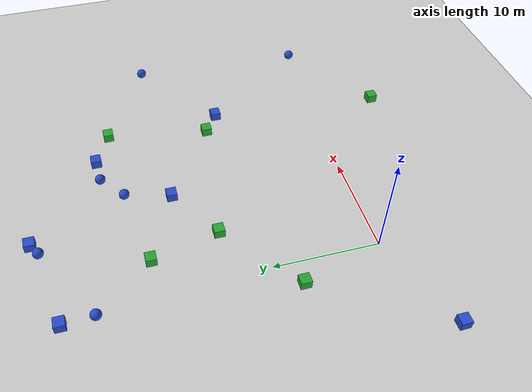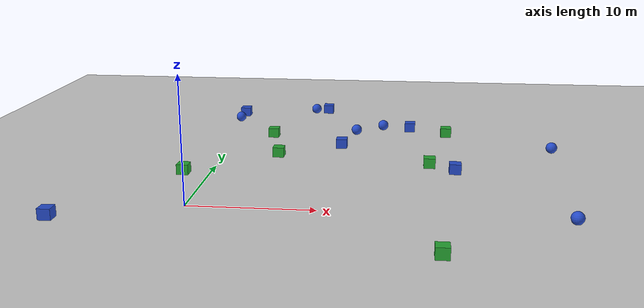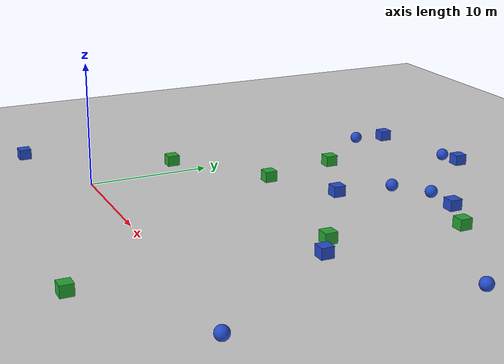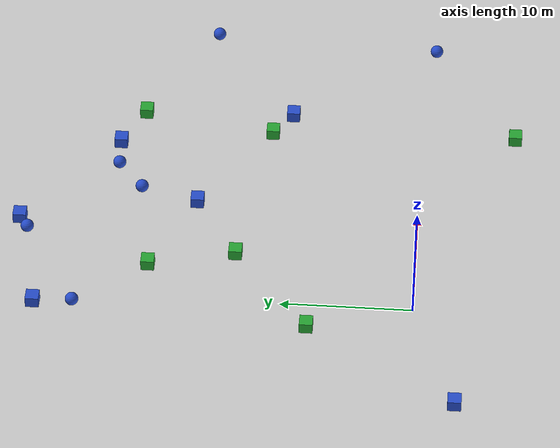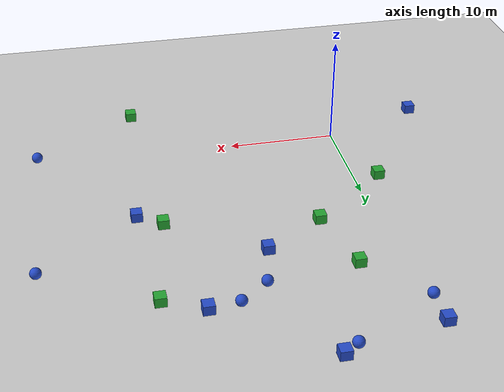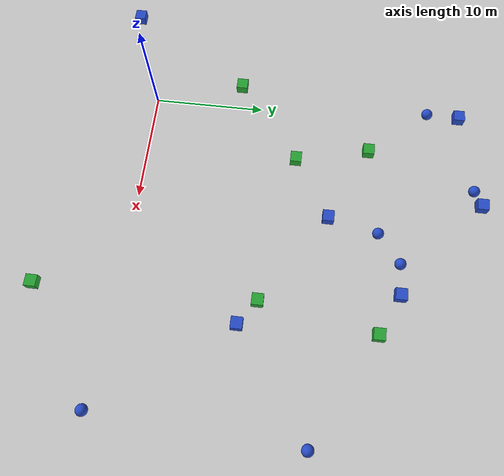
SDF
<sdf version="1.6">
 <world name="default">
  <light name="sun" type="directional">
   <pose>0 0 10 0 -0 0</pose>
   <diffuse>0.8 0.8 0.8 1</diffuse>
   <specular>0.1 0.1 0.1 1</specular>
   <attenuation>
    <range>1000</range>
    <constant>0.9</constant>
    <linear>0.01</linear>
    <quadratic>0.001</quadratic>
   </attenuation>
   <direction>-0.5 0.5 -1</direction>
  </light>
  <model name="ground_plane">
   <static>1</static>
   <link name="link">
    <collision name="collision">
     <geometry><plane><normal>0 0 1</normal><size>100 100</size></plane></geometry>
     <surface><friction><ode><mu>100</mu><mu2>50</mu2></ode></friction></surface>
    </collision>
    <visual name="visual">
     <cast_shadows>0</cast_shadows>
     <geometry><plane><normal>0 0 1</normal><size>100 100</size></plane></geometry>
     <material>
      <script><uri>file://media/materials/scripts/gazebo.material</uri><name>Gazebo/Grey</name></script>
     </material>
    </visual>
   </link>
  </model>
  <model name="unit_box_green_6">
   <pose>20.1463151689 21.8783223517 0.329741 0 -0 0</pose>
   <link name="link">
    <inertial>
     <mass>1</mass>
     <inertia>
      <ixx>0.166667</ixx>
      <ixy>0</ixy>
      <ixz>0</ixz>
      <iyy>0.166667</iyy>
      <iyz>0</iyz>
      <izz>0.166667</izz>
     </inertia>
    </inertial>
    <collision name="collision"><geometry><box><size>1 1 0.999999</size></box></geometry></collision>
    <visual name="visual">
     <geometry><box><size>1 1 0.999999</size></box></geometry>
     <material>
      <script><name>Gazebo/Green</name><uri>file://media/materials/scripts/gazebo.material</uri></script>
     </material>
    </visual>
   </link>
  </model>
  <model name="unit_box_green_5">
   <pose>18.9428884595 -7.31985493747 0.329741 0 -0 0</pose>
   <link name="link">
    <inertial>
     <mass>1</mass>
     <inertia>
      <ixx>0.166667</ixx>
      <ixy>0</ixy>
      <ixz>0</ixz>
      <iyy>0.166667</iyy>
      <iyz>0</iyz>
      <izz>0.166667</izz>
     </inertia>
    </inertial>
    <collision name="collision"><geometry><box><size>1 1 0.999999</size></box></geometry></collision>
    <visual name="visual">
     <geometry><box><size>1 1 0.999999</size></box></geometry>
     <material>
      <script><name>Gazebo/Green</name><uri>file://media/materials/scripts/gazebo.material</uri></script>
     </material>
    </visual>
   </link>
  </model>
  <model name="unit_box_green_4">
   <pose>3.40311185683 20.212577856 0.329741 0 -0 0</pose>
   <link name="link">
    <inertial>
     <mass>1</mass>
     <inertia>
      <ixx>0.166667</ixx>
      <ixy>0</ixy>
      <ixz>0</ixz>
      <iyy>0.166667</iyy>
      <iyz>0</iyz>
      <izz>0.166667</izz>
     </inertia>
    </inertial>
    <collision name="collision"><geometry><box><size>1 1 0.999999</size></box></geometry></collision>
    <visual name="visual">
     <geometry><box><size>1 1 0.999999</size></box></geometry>
     <material>
      <script><name>Gazebo/Green</name><uri>file://media/materials/scripts/gazebo.material</uri></script>
     </material>
    </visual>
   </link>
  </model>
  <model name="unit_box_green_3">
   <pose>4.93085732142 13.6733218787 0.329741 0 -0 0</pose>
   <link name="link">
    <inertial>
     <mass>1</mass>
     <inertia>
      <ixx>0.166667</ixx>
      <ixy>0</ixy>
      <ixz>0</ixz>
      <iyy>0.166667</iyy>
      <iyz>0</iyz>
      <izz>0.166667</izz>
     </inertia>
    </inertial>
    <collision name="collision"><geometry><box><size>1 1 0.999999</size></box></geometry></collision>
    <visual name="visual">
     <geometry><box><size>1 1 0.999999</size></box></geometry>
     <material>
      <script><name>Gazebo/Green</name><uri>file://media/materials/scripts/gazebo.material</uri></script>
     </material>
    </visual>
   </link>
  </model>
  <model name="unit_box_green_2">
   <pose>-2.27693200933 7.87064397392 0.329741 0 -0 0</pose>
   <link name="link">
    <inertial>
     <mass>1</mass>
     <inertia>
      <ixx>0.166667</ixx>
      <ixy>0</ixy>
      <ixz>0</ixz>
      <iyy>0.166667</iyy>
      <iyz>0</iyz>
      <izz>0.166667</izz>
     </inertia>
    </inertial>
    <collision name="collision"><geometry><box><size>1 1 0.999999</size></box></geometry></collision>
    <visual name="visual">
     <geometry><box><size>1 1 0.999999</size></box></geometry>
     <material>
      <script><name>Gazebo/Green</name><uri>file://media/materials/scripts/gazebo.material</uri></script>
     </material>
    </visual>
   </link>
  </model>
  <model name="unit_box_green_1">
   <pose>18.4073611484 11.7189334528 0.329741 0 -0 0</pose>
   <link name="link">
    <inertial>
     <mass>1</mass>
     <inertia>
      <ixx>0.166667</ixx>
      <ixy>0</ixy>
      <ixz>0</ixz>
      <iyy>0.166667</iyy>
      <iyz>0</iyz>
      <izz>0.166667</izz>
     </inertia>
    </inertial>
    <collision name="collision"><geometry><box><size>1 1 0.999999</size></box></geometry></collision>
    <visual name="visual">
     <geometry><box><size>1 1 0.999999</size></box></geometry>
     <material>
      <script><name>Gazebo/Green</name><uri>file://media/materials/scripts/gazebo.material</uri></script>
     </material>
    </visual>
   </link>
  </model>
  <model name="unit_box_blue_6">
   <pose>-1.03002878774 28.438538627 0.329741 0 -0 0</pose>
   <link name="link">
    <inertial>
     <mass>1</mass>
     <inertia>
      <ixx>0.166667</ixx>
      <ixy>0</ixy>
      <ixz>0</ixz>
      <iyy>0.166667</iyy>
      <iyz>0</iyz>
      <izz>0.166667</izz>
     </inertia>
    </inertial>
    <collision name="collision"><geometry><box><size>1 1 0.999999</size></box></geometry></collision>
    <visual name="visual">
     <geometry><box><size>1 1 0.999999</size></box></geometry>
     <material>
      <script><name>Gazebo/Blue</name><uri>file://media/materials/scripts/gazebo.material</uri></script>
     </material>
    </visual>
   </link>
  </model>
  <model name="unit_box_blue_5">
   <pose>10.3424876415 17.0191560895 0.329741 0 -0 0</pose>
   <link name="link">
    <inertial>
     <mass>1</mass>
     <inertia>
      <ixx>0.166667</ixx>
      <ixy>0</ixy>
      <ixz>0</ixz>
      <iyy>0.166667</iyy>
      <iyz>0</iyz>
      <izz>0.166667</izz>
     </inertia>
    </inertial>
    <collision name="collision"><geometry><box><size>1 1 0.999999</size></box></geometry></collision>
    <visual name="visual">
     <geometry><box><size>1 1 0.999999</size></box></geometry>
     <material>
      <script><name>Gazebo/Blue</name><uri>file://media/materials/scripts/gazebo.material</uri></script>
     </material>
    </visual>
   </link>
  </model>
  <model name="unit_box_blue_4">
   <pose>7.76439236753 30.4712513274 0.329741 0 -0 0</pose>
   <link name="link">
    <inertial>
     <mass>1</mass>
     <inertia>
      <ixx>0.166667</ixx>
      <ixy>0</ixy>
      <ixz>0</ixz>
      <iyy>0.166667</iyy>
      <iyz>0</iyz>
      <izz>0.166667</izz>
     </inertia>
    </inertial>
    <collision name="collision"><geometry><box><size>1 1 0.999999</size></box></geometry></collision>
    <visual name="visual">
     <geometry><box><size>1 1 0.999999</size></box></geometry>
     <material>
      <script><name>Gazebo/Blue</name><uri>file://media/materials/scripts/gazebo.material</uri></script>
     </material>
    </visual>
   </link>
  </model>
  <model name="unit_box_blue_3">
   <pose>-9.25066083877 -3.33319144853 0.329741 0 -0 0</pose>
   <link name="link">
    <inertial>
     <mass>1</mass>
     <inertia>
      <ixx>0.166667</ixx>
      <ixy>0</ixy>
      <ixz>0</ixz>
      <iyy>0.166667</iyy>
      <iyz>0</iyz>
      <izz>0.166667</izz>
     </inertia>
    </inertial>
    <collision name="collision"><geometry><box><size>1 1 0.999999</size></box></geometry></collision>
    <visual name="visual">
     <geometry><box><size>1 1 0.999999</size></box></geometry>
     <material>
      <script><name>Gazebo/Blue</name><uri>file://media/materials/scripts/gazebo.material</uri></script>
     </material>
    </visual>
   </link>
  </model>
  <model name="unit_box_blue_2">
   <pose>16.6349487868 23.5500612811 0.329741 0 -0 0</pose>
   <link name="link">
    <inertial>
     <mass>1</mass>
     <inertia>
      <ixx>0.166667</ixx>
      <ixy>0</ixy>
      <ixz>0</ixz>
      <iyy>0.166667</iyy>
      <iyz>0</iyz>
      <izz>0.166667</izz>
     </inertia>
    </inertial>
    <collision name="collision"><geometry><box><size>1 1 0.999999</size></box></geometry></collision>
    <visual name="visual">
     <geometry><box><size>1 1 0.999999</size></box></geometry>
     <material>
      <script><name>Gazebo/Blue</name><uri>file://media/materials/scripts/gazebo.material</uri></script>
     </material>
    </visual>
   </link>
  </model>
  <model name="unit_box_blue_1">
   <pose>20.5417453839 10.2435643714 0.329741 0 -0 0</pose>
   <link name="link">
    <inertial>
     <mass>1</mass>
     <inertia>
      <ixx>0.166667</ixx>
      <ixy>0</ixy>
      <ixz>0</ixz>
      <iyy>0.166667</iyy>
      <iyz>0</iyz>
      <izz>0.166667</izz>
     </inertia>
    </inertial>
    <collision name="collision"><geometry><box><size>1 1 0.999999</size></box></geometry></collision>
    <visual name="visual">
     <geometry><box><size>1 1 0.999999</size></box></geometry>
     <material>
      <script><name>Gazebo/Blue</name><uri>file://media/materials/scripts/gazebo.material</uri></script>
     </material>
    </visual>
   </link>
  </model>
  <model name="unit_sphere_blue_6">
   <pose>11.4357085122 21.4197155784 0.5 0 -0 0</pose>
   <link name="link">
    <inertial>
     <mass>1</mass>
     <inertia><ixx>0.1</ixx><ixy>0</ixy><ixz>0</ixz><iyy>0.1</iyy><iyz>0</iyz><izz>0.1</izz></inertia>
    </inertial>
    <collision name="collision"><geometry><sphere><radius>0.5</radius></sphere></geometry></collision>
    <visual name="visual">
     <geometry><sphere><radius>0.5</radius></sphere></geometry>
     <material>
      <script><name>Gazebo/Blue</name><uri>file://media/materials/scripts/gazebo.material</uri></script>
     </material>
    </visual>
   </link>
  </model>
  <model name="unit_sphere_blue_5">
   <pose>29.5230065819 16.8438771648 0.5 0 -0 0</pose>
   <link name="link">
    <inertial>
     <mass>1</mass>
     <inertia><ixx>0.1</ixx><ixy>0</ixy><ixz>0</ixz><iyy>0.1</iyy><iyz>0</iyz><izz>0.1</izz></inertia>
    </inertial>
    <collision name="collision"><geometry><sphere><radius>0.5</radius></sphere></geometry></collision>
    <visual name="visual">
     <geometry><sphere><radius>0.5</radius></sphere></geometry>
     <material>
      <script><name>Gazebo/Blue</name><uri>file://media/materials/scripts/gazebo.material</uri></script>
     </material>
    </visual>
   </link>
  </model>
  <model name="unit_sphere_blue_4">
   <pose>6.49183403703 29.7533466305 0.5 0 -0 0</pose>
   <link name="link">
    <inertial>
     <mass>1</mass>
     <inertia><ixx>0.1</ixx><ixy>0</ixy><ixz>0</ixz><iyy>0.1</iyy><iyz>0</iyz><izz>0.1</izz></inertia>
    </inertial>
    <collision name="collision"><geometry><sphere><radius>0.5</radius></sphere></geometry></collision>
    <visual name="visual">
     <geometry><sphere><radius>0.5</radius></sphere></geometry>
     <material>
      <script><name>Gazebo/Blue</name><uri>file://media/materials/scripts/gazebo.material</uri></script>
     </material>
    </visual>
   </link>
  </model>
  <model name="unit_sphere_blue_3">
   <pose>13.9804424824 23.4177094172 0.5 0 -0 0</pose>
   <link name="link">
    <inertial>
     <mass>1</mass>
     <inertia><ixx>0.1</ixx><ixy>0</ixy><ixz>0</ixz><iyy>0.1</iyy><iyz>0</iyz><izz>0.1</izz></inertia>
    </inertial>
    <collision name="collision"><geometry><sphere><radius>0.5</radius></sphere></geometry></collision>
    <visual name="visual">
     <geometry><sphere><radius>0.5</radius></sphere></geometry>
     <material>
      <script><name>Gazebo/Blue</name><uri>file://media/materials/scripts/gazebo.material</uri></script>
     </material>
    </visual>
   </link>
  </model>
  <model name="unit_sphere_blue_2">
   <pose>28.5841795061 -0.835064805747 0.5 0 -0 0</pose>
   <link name="link">
    <inertial>
     <mass>1</mass>
     <inertia><ixx>0.1</ixx><ixy>0</ixy><ixz>0</ixz><iyy>0.1</iyy><iyz>0</iyz><izz>0.1</izz></inertia>
    </inertial>
    <collision name="collision"><geometry><sphere><radius>0.5</radius></sphere></geometry></collision>
    <visual name="visual">
     <geometry><sphere><radius>0.5</radius></sphere></geometry>
     <material>
      <script><name>Gazebo/Blue</name><uri>file://media/materials/scripts/gazebo.material</uri></script>
     </material>
    </visual>
   </link>
  </model>
  <model name="unit_sphere_blue_1">
   <pose>-0.987206529647 25.4867055671 0.5 0 -0 0</pose>
   <link name="link">
    <inertial>
     <mass>1</mass>
     <inertia><ixx>0.1</ixx><ixy>0</ixy><ixz>0</ixz><iyy>0.1</iyy><iyz>0</iyz><izz>0.1</izz></inertia>
    </inertial>
    <collision name="collision"><geometry><sphere><radius>0.5</radius></sphere></geometry></collision>
    <visual name="visual">
     <geometry><sphere><radius>0.5</radius></sphere></geometry>
     <material>
      <script><name>Gazebo/Blue</name><uri>file://media/materials/scripts/gazebo.material</uri></script>
     </material>
    </visual>
   </link>
  </model>
  <gravity>0 0 -9.8</gravity>
  <magnetic_field>6e-06 2.3e-05 -4.2e-05</magnetic_field>
  <atmosphere type="adiabatic"/>
  <physics default="0" name="default_physics" type="ode">
   <max_step_size>0.001</max_step_size>
   <real_time_factor>1</real_time_factor>
   <real_time_update_rate>1000</real_time_update_rate>
  </physics>
  <scene><ambient>0.4 0.4 0.4 1</ambient><background>0.7 0.7 0.7 1</background><shadows>1</shadows></scene>
  <spherical_coordinates>
   <surface_model>EARTH_WGS84</surface_model>
   <latitude_deg>0</latitude_deg>
   <longitude_deg>0</longitude_deg>
   <elevation>0</elevation>
   <heading_deg>0</heading_deg>
  </spherical_coordinates>
 </world>
</sdf>
